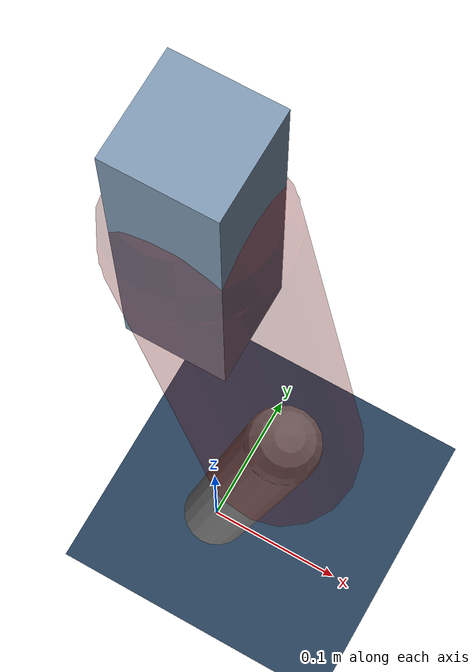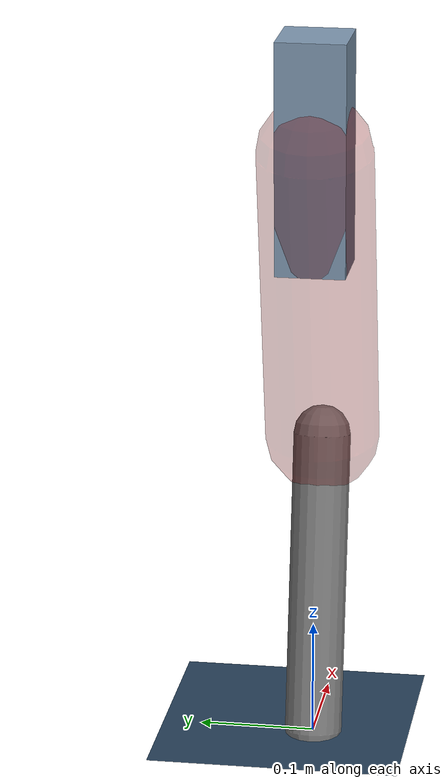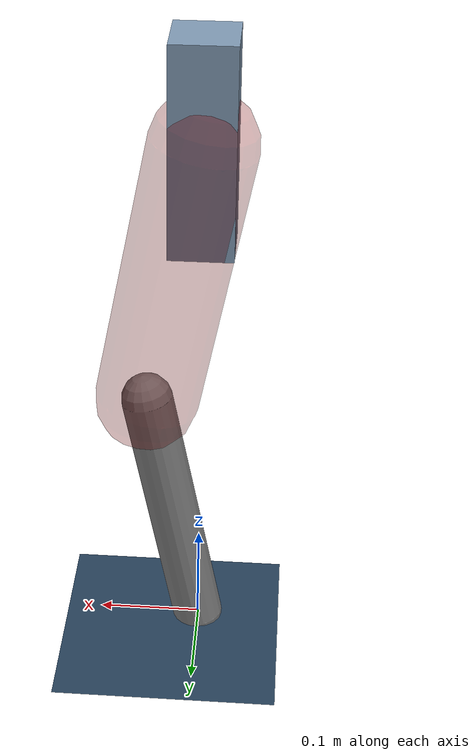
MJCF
<mujoco model="Hopper2D">
	<compiler inertiafromgeom="true" angle="radian" />
	<option timestep="0.001" integrator="implicit" cone="elliptic" solver="Newton" tolerance="1e-10" />

	<default>
		<geom contype="1" conaffinity="1" condim="3" friction="2 0.005 0.0001" solref="0.005 1" />
		<joint limited="true" damping="0.1" />
	</default>

	<asset>
		<texture name="skybox" type="skybox" builtin="gradient" rgb1=".4 .6 .8" rgb2="0 0 0" width="800" height="800" />
		<texture name="grid" type="2d" builtin="checker" rgb1=".1 .2 .3" rgb2=".2 .3 .4" width="300" height="300" mark="edge" markrgb=".2 .3 .4" />
		<material name="ground" texture="grid" texrepeat="1 1" texuniform="true" reflectance="0.1" />
		<material name="leg" rgba="0.5 0.6 0.7 1" />
	</asset>

	<worldbody>

		<geom name="floor" type="plane" size="5 5 0.25" material="ground" />

		<light directional="false" diffuse="0.8 0.8 0.8" specular="0.3 0.3 0.3" pos="0 0 2" dir="0 0 -1" />
		<light mode="targetbodycom" target="base" directional="false" diffuse="0.8 0.8 0.8" specular="0.3 0.3 0.3" pos="0 0 2" dir="0 0 -1" />

		<camera name="fixed" pos="0 -2 1" xyaxes="1 0 0 0 0 1" />
		<camera name="tracking" mode="trackcom" pos="0 -3 1" />

		<body name="root" pos="0 0 0.5239907538733511">
			<joint name="slide_x" type="slide" axis="1 0 0" range="-100 100" />
			<joint name="slide_z" type="slide" axis="0 0 1" range="0 10" />

			<body name="base" pos="0 0 0">
				<geom name="torso" type="box" size="0.03 0.03 0.1" mass="2.539" material="leg" />

				<body name="link1" pos="0 0 0" euler="0 1.3791308463758225 0">
					<joint type="hinge" axis="0 -1 0" pos="0 0 0" name="hinge1" limited="true" range="-3.14 3.14" stiffness="0" damping="0.1" />
					<geom name="thigh" type="capsule" fromto="0 0 0 0.2699601195869954 0 0" size="0.05" rgba="0.5 0 0 0.3" mass="0.9085923228848874" />

					<body name="link2" pos="0.2699601195869954 0 0" euler="0 0.3876906526508922 0">
						<joint type="hinge" axis="0 -1 0" pos="0 0 0" name="hinge2" limited="true" range="-3.14 3.14" stiffness="0" damping="0.1" />
						<geom name="shank" type="capsule" fromto="0 0 0 0.26403063428635576 0 0" size="0.025" mass="0.45402757085772016" />

					</body>
				</body>
			</body>
		</body>
	</worldbody>

	<actuator>
		<motor name="torque1" joint="hinge1" ctrlrange="-21.616020135222048 21.616020135222048" ctrllimited="true" gear="1" />
		<motor name="torque2" joint="hinge2" ctrlrange="-85.66534897191552 85.66534897191552" ctrllimited="true" gear="1" />
	</actuator>
</mujoco>
